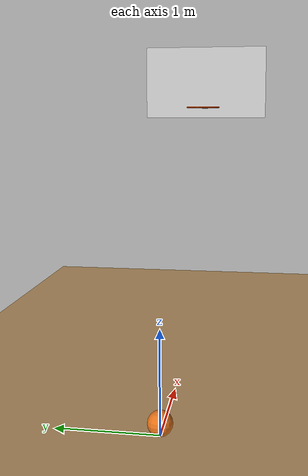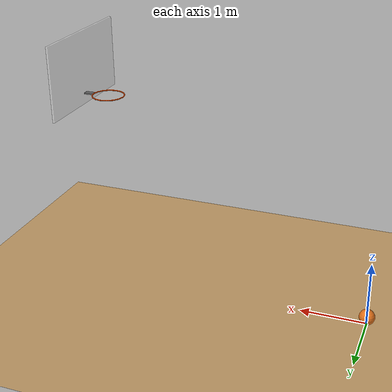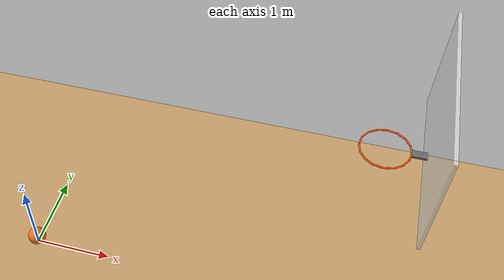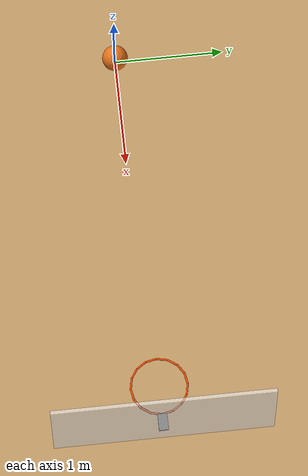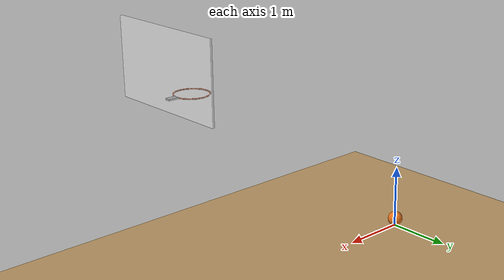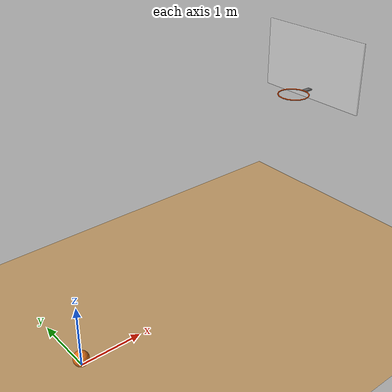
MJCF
<mujoco model="basketball_shot">
  <option timestep="0.002" gravity="0 0 -9.81"/>
  <worldbody>
    <light name="sun" pos="2 -3 6" dir="0 0.4 -1" directional="true"/>
    <geom name="floor" type="plane" size="10 5 0.1" rgba="0.75 0.6 0.4 1"/>
    <body name="ball" pos="0 0 0.119">
      <freejoint/>
      <geom name="ball" type="sphere" size="0.119" mass="0.62" rgba="0.9 0.45 0.1 1"/>
    </body>
    <body name="hoop" pos="4 0 3.05">
      <geom name="rim_00" type="capsule" size="0.008" fromto="0.2366 0 0 0.21859 0.09054 0" rgba="1 0.3 0 1"/>
      <geom name="rim_01" type="capsule" size="0.008" fromto="0.21859 0.09054 0 0.16730 0.16730 0" rgba="1 0.3 0 1"/>
      <geom name="rim_02" type="capsule" size="0.008" fromto="0.16730 0.16730 0 0.09054 0.21859 0" rgba="1 0.3 0 1"/>
      <geom name="rim_03" type="capsule" size="0.008" fromto="0.09054 0.21859 0 0 0.2366 0" rgba="1 0.3 0 1"/>
      <geom name="rim_04" type="capsule" size="0.008" fromto="0 0.2366 0 -0.09054 0.21859 0" rgba="1 0.3 0 1"/>
      <geom name="rim_05" type="capsule" size="0.008" fromto="-0.09054 0.21859 0 -0.16730 0.16730 0" rgba="1 0.3 0 1"/>
      <geom name="rim_06" type="capsule" size="0.008" fromto="-0.16730 0.16730 0 -0.21859 0.09054 0" rgba="1 0.3 0 1"/>
      <geom name="rim_07" type="capsule" size="0.008" fromto="-0.21859 0.09054 0 -0.2366 0 0" rgba="1 0.3 0 1"/>
      <geom name="rim_08" type="capsule" size="0.008" fromto="-0.2366 0 0 -0.21859 -0.09054 0" rgba="1 0.3 0 1"/>
      <geom name="rim_09" type="capsule" size="0.008" fromto="-0.21859 -0.09054 0 -0.16730 -0.16730 0" rgba="1 0.3 0 1"/>
      <geom name="rim_10" type="capsule" size="0.008" fromto="-0.16730 -0.16730 0 -0.09054 -0.21859 0" rgba="1 0.3 0 1"/>
      <geom name="rim_11" type="capsule" size="0.008" fromto="-0.09054 -0.21859 0 0 -0.2366 0" rgba="1 0.3 0 1"/>
      <geom name="rim_12" type="capsule" size="0.008" fromto="0 -0.2366 0 0.09054 -0.21859 0" rgba="1 0.3 0 1"/>
      <geom name="rim_13" type="capsule" size="0.008" fromto="0.09054 -0.21859 0 0.16730 -0.16730 0" rgba="1 0.3 0 1"/>
      <geom name="rim_14" type="capsule" size="0.008" fromto="0.16730 -0.16730 0 0.21859 -0.09054 0" rgba="1 0.3 0 1"/>
      <geom name="rim_15" type="capsule" size="0.008" fromto="0.21859 -0.09054 0 0.2366 0 0" rgba="1 0.3 0 1"/>
    </body>
    <body name="backboard" pos="4.38 0 3.05">
      <geom name="bracket" type="box" size="0.07 0.04 0.01" pos="-0.075 0 0" rgba="0.4 0.4 0.4 1"/>
      <geom name="backboard" type="box" size="0.015 0.915 0.535" pos="0 0 0.385" rgba="0.95 0.95 0.95 0.6"/>
    </body>
  </worldbody>
  <keyframe>
    <key name="start" qpos="0 0 0.119 1 0 0 0" qvel="3.008 0 8.726 0 0 0"/>
  </keyframe>
</mujoco>
